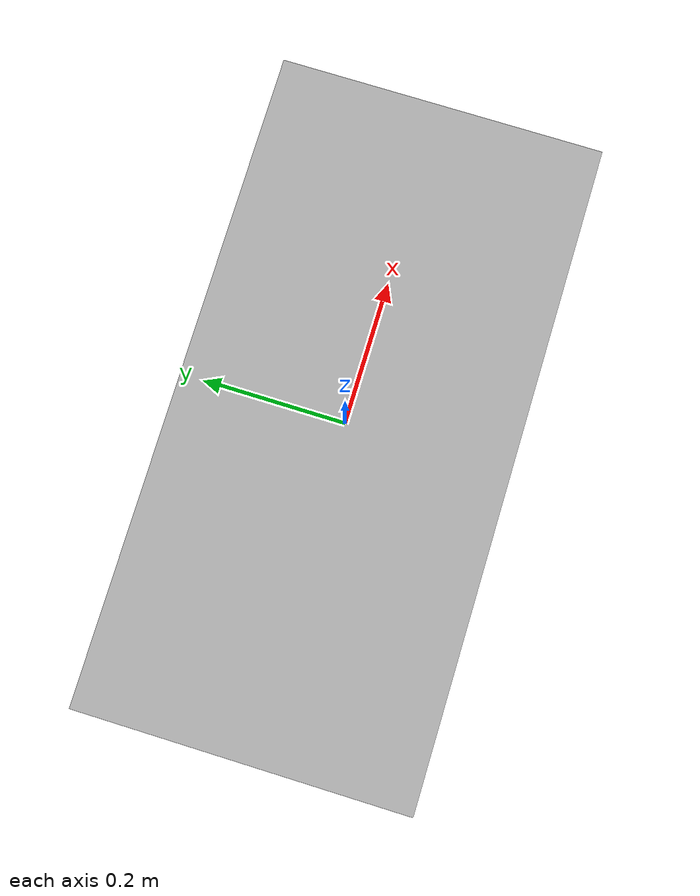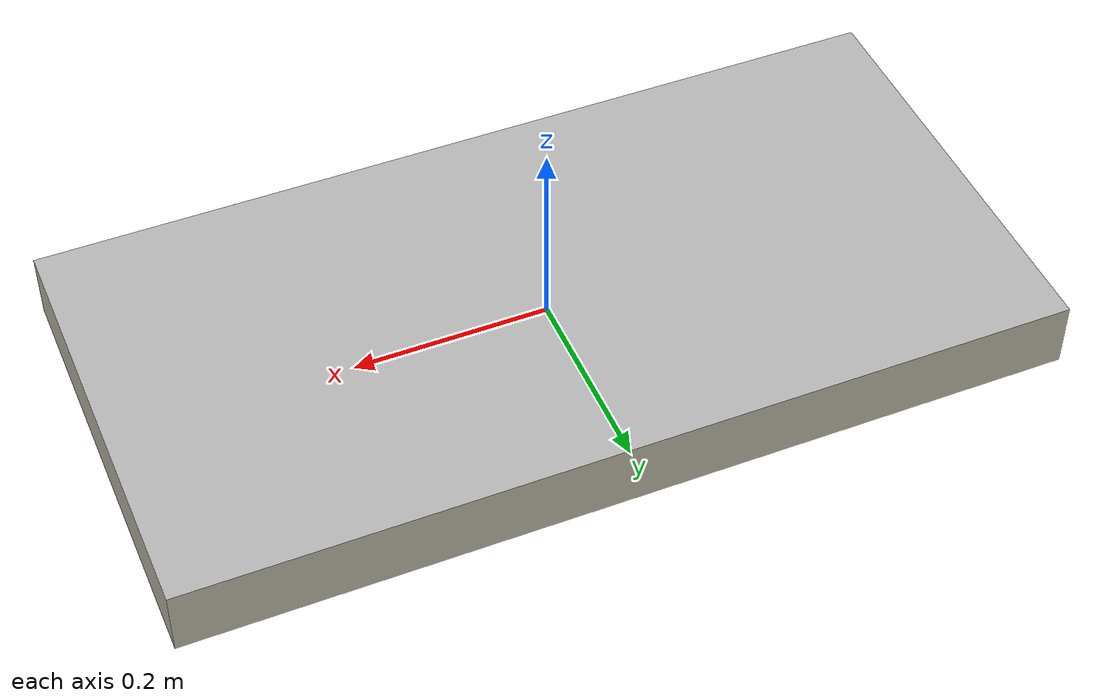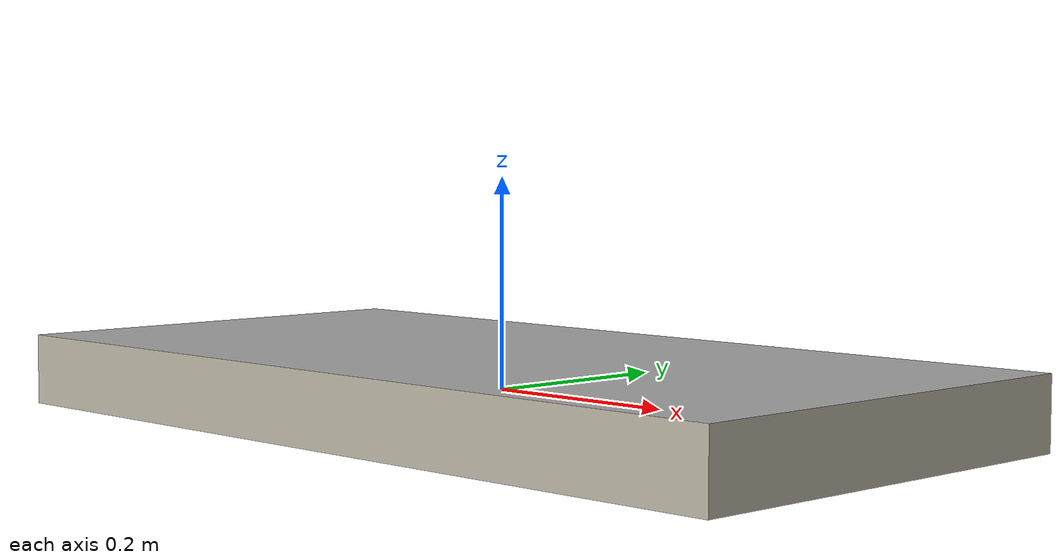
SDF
<?xml version="1.0"?>
<sdf version="1.6">
  <model name="Eurobot Stage Model">
    <static>true</static>
    <link name="stage">
      <collision name="stage_collision">
        <geometry>
          <box>
            <size>0.9 0.45 0.07</size>
          </box>
        </geometry>
      </collision>
      <visual name="stage_visual">
        <geometry>
          <mesh>
            <uri>model://eurobot_25/stage/meshes/eurobot_2025_stage.dae</uri>
            <scale>1.0 1.0 1.0</scale>
          </mesh>
        </geometry>
      </visual>
    </link>

  </model>
</sdf>
